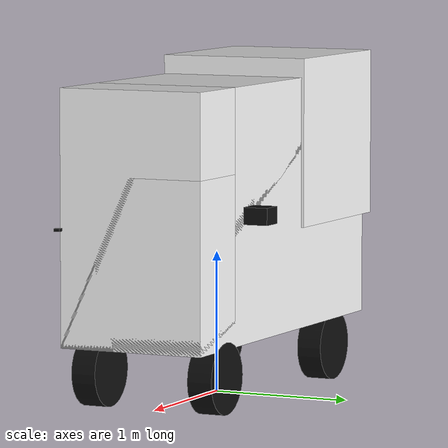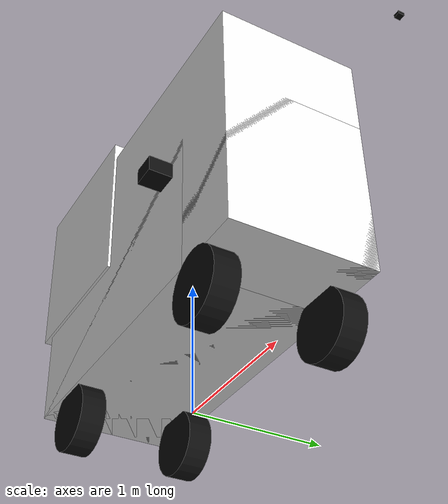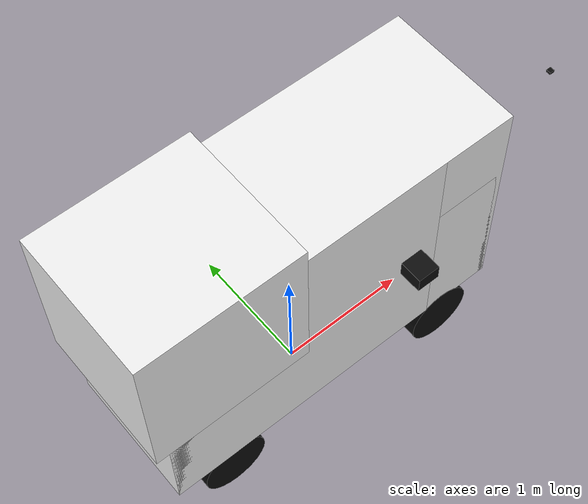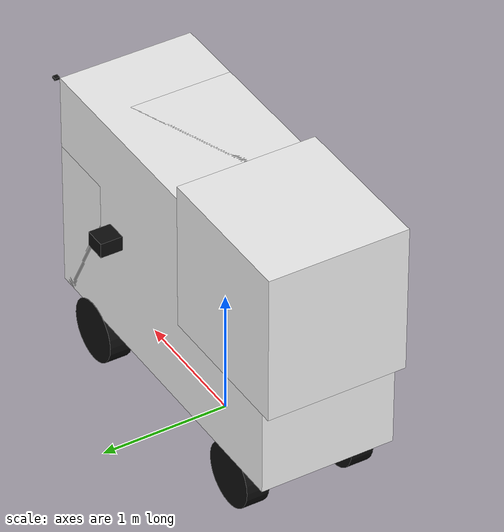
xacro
<?xml version="1.0"?>
<robot name="bee1" xmlns:xacro="http://www.ros.org/wiki/xacro">

  <xacro:property name="govde_uzunluk" value="2.740"/>
  <xacro:property name="govde_genislik" value="1.060"/>
  <xacro:property name="govde_yukseklik" value="1.785"/>
  <xacro:property name="dingil_mesafesi" value="1.860"/>
  <xacro:property name="govde_z_offset" value="0.45"/>
  <xacro:property name="tekerlek_yaricap" value="0.25"/>
  <xacro:property name="tekerlek_genislik" value="0.18"/>
  <xacro:property name="kasa_uzunluk" value="1.2"/>
  <xacro:property name="kasa_genislik" value="1.1"/>
  <xacro:property name="kasa_yukseklik" value="1.2"/>

  <material name="beyaz"><color rgba="0.95 0.95 0.95 1"/></material>
  <material name="siyah"><color rgba="0.05 0.05 0.05 1"/></material>
  <material name="kirmizi"><color rgba="0.8 0 0 1"/></material>

  <link name="base_link">
    <visual>
      <origin xyz="0 0 0" rpy="0 0 0"/>
      <geometry>
        <box size="${govde_uzunluk} ${govde_genislik} ${govde_yukseklik}"/>
      </geometry>
      <material name="beyaz"/>
    </visual>
    <inertial>
      <origin xyz="0 0 0" rpy="0 0 0" />
      <mass value="294.0" />
      <inertia
        ixx="${(1/12) * 50.0 * (govde_genislik*govde_genislik + govde_yukseklik*govde_yukseklik)}" ixy="0.0" ixz="0.0"
        iyy="${(1/12) * 50.0 * (govde_uzunluk*govde_uzunluk + govde_yukseklik*govde_yukseklik)}" iyz="0.0"
        izz="${(1/12) * 50.0 * (govde_uzunluk*govde_uzunluk + govde_genislik*govde_genislik)}" />
    </inertial>
    <collision>
      <origin xyz="0 0 0" rpy="0 0 0"/>
      <geometry>
        <box size="${govde_uzunluk} ${govde_genislik} ${govde_yukseklik}"/>
      </geometry>
    </collision>
  </link>

  <link name="arka_kabin_link">
    <visual>
      <origin xyz="0 0 0" rpy="0 0 0"/>
      <geometry>
        <box size="${4 * govde_uzunluk / 5} ${govde_genislik} ${govde_yukseklik}"/>
      </geometry>
      <material name="beyaz"/>
    </visual>
  </link>
  <joint name="arka_kabin_joint" type="fixed">
    <parent link="base_link"/>
    <child link="arka_kabin_link"/>
    <origin xyz="-${govde_uzunluk / 10} 0 0" rpy="0 0 0"/>
  </joint>

  <link name="on_kabin_link">
    <visual>
      <origin xyz="0 0 0" rpy="0 0 0"/>
      <geometry>
        <box size="${govde_uzunluk / 5} ${govde_genislik} ${2 * govde_yukseklik / 3}"/>
      </geometry>
      <material name="beyaz"/>
    </visual>
  </link>
  <joint name="on_kabin_joint" type="fixed">
    <parent link="base_link"/>
    <child link="on_kabin_link"/>
    <origin xyz="${4 * govde_uzunluk / 10} 0 -${govde_yukseklik / 6}" rpy="0 0 0"/>
  </joint>

  <link name="kasa_link">
    <visual>
      <origin xyz="0 0 0" rpy="0 0 0"/>
      <geometry>
        <box size="${kasa_uzunluk} ${kasa_genislik} ${kasa_yukseklik}"/>
      </geometry>
      <material name="beyaz"/>
    </visual>
    <collision>
      <origin xyz="0 0 0" rpy="0 0 0"/>
      <geometry>
        <box size="${kasa_uzunluk} ${kasa_genislik} ${kasa_yukseklik}"/>
      </geometry>
    </collision>
    <inertial>
      <mass value="406.0"/>
      <inertia
        ixx="${40.0 * (kasa_genislik * kasa_genislik + kasa_yukseklik * kasa_yukseklik) / 12.0}"
        ixy="0" ixz="0"
        iyy="${40.0 * (kasa_uzunluk * kasa_uzunluk + kasa_yukseklik * kasa_yukseklik) / 12.0}"
        iyz="0"
        izz="${40.0 * (kasa_genislik * kasa_genislik + kasa_uzunluk * kasa_uzunluk) / 12.0}"/>
    </inertial>
  </link>
  <joint name="kasa_joint" type="fixed">
    <parent link="base_link"/>
    <child link="kasa_link"/>
    <origin xyz="-0.875 0 0.4275"/>
  </joint>

  <link name="base_footprint"/>
  <joint name="base_footprint_joint" type="fixed">
    <parent link="base_footprint"/>
    <child link="base_link"/>
    <origin xyz="0 0 ${govde_z_offset + govde_yukseklik/2}" rpy="0 0 0"/>
  </joint>

  <link name="front_aks">
    <inertial>
      <mass value="0.1"/>
      <inertia ixx="0.001" ixy="0" ixz="0" iyy="0.001" iyz="0" izz="0.001"/>
    </inertial>
  </link>
  <joint name="front_aks_joint" type="fixed">
    <parent link="base_footprint"/>
    <child link="front_aks"/>
    <origin xyz="0.96 0 0" rpy="0 0 0"/>
  </joint>

  <xacro:macro name="dikiz_aynasi" params="ad y_ofset">
    <link name="${ad}">
      <visual>
        <origin xyz="0 0 0" rpy="0 0 0"/>
        <geometry>
          <box size="0.17 0.18 0.12"/>
        </geometry>
        <material name="siyah"/>
      </visual>
      <inertial>
        <mass value="1.0"/>
        <inertia ixx="0.003" ixy="0" ixz="0" iyy="0.003" iyz="0" izz="0.003" />
      </inertial>
    </link>
    <joint name="${ad}_joint" type="fixed">
      <parent link="base_link"/>
      <child link="${ad}"/>
      <origin xyz="0.6 ${y_ofset} 0" rpy="0 0 0"/>
    </joint>
    <gazebo reference="${ad}">
      <material>Gazebo/Black</material>
    </gazebo>
  </xacro:macro>

  <xacro:dikiz_aynasi ad="dikiz_sol" y_ofset="0.615"/>
  <xacro:dikiz_aynasi ad="dikiz_sag" y_ofset="-0.615"/>

  <xacro:macro name="tekerlek" params="ad x_ofset y_ofset">
    <link name="${ad}">
      <visual>
        <origin xyz="0 0 0" rpy="1.5708 0 0"/>
        <geometry>
          <cylinder radius="${tekerlek_yaricap}" length="${tekerlek_genislik}"/>
        </geometry>
        <material name="siyah"/>
      </visual>
      <collision>
        <origin xyz="0 0 0" rpy="1.5708 0 0"/>
        <geometry>
          <cylinder radius="${tekerlek_yaricap}" length="${tekerlek_genislik}"/>
        </geometry>
      </collision>
      <inertial>
        <mass value="15"/>
        <inertia ixx="0.5" ixy="0" ixz="0" iyy="0.5" iyz="0" izz="0.5"/>
      </inertial>
    </link>
    <joint name="${ad}_joint" type="continuous">
      <parent link="base_footprint"/>
      <child link="${ad}"/>
      <origin xyz="${x_ofset} ${y_ofset} ${tekerlek_yaricap}" rpy="0 0 0"/>
      <axis xyz="0 1 0"/>
    </joint>
  </xacro:macro>

  <xacro:tekerlek ad="tekerlek_on_sol"   x_ofset="0.96"  y_ofset="0.443"/>
  <xacro:tekerlek ad="tekerlek_on_sag"   x_ofset="0.96"  y_ofset="-0.443"/>
  <xacro:tekerlek ad="tekerlek_arka_sol" x_ofset="-0.9"  y_ofset="0.425"/>
  <xacro:tekerlek ad="tekerlek_arka_sag" x_ofset="-0.9"  y_ofset="-0.425"/>

  <link name="aks_on_sol"/>
  <joint name="aks_on_sol_joint" type="revolute">
    <parent link="base_link"/>
    <child link="aks_on_sol"/>
    <origin xyz="0.96 -0.443 0.25" rpy="0 0 0"/>
    <axis xyz="0 0 1"/>
    <limit lower="-0.567" upper="0.567" effort="100.0" velocity="10.0"/>
  </joint>

  <link name="aks_on_sag"/>
  <joint name="aks_on_sag_joint" type="revolute">
    <parent link="base_link"/>
    <child link="aks_on_sag"/>
    <origin xyz="0.96 0.443 0.25" rpy="0 0 0"/>
    <axis xyz="0 0 1"/>
    <limit lower="-0.567" upper="0.567" effort="100.0" velocity="10.0"/>
  </joint>

  <link name="lidar_link">
    <visual>
      <geometry><cylinder radius="0.05" length="0.07"/></geometry>
      <material name="siyah"/>
    </visual>
  </link>
  <joint name="lidar_joint" type="fixed">
    <parent link="front_aks"/>
    <child link="lidar_link"/>
    <origin xyz="-0.177 0 0.62" rpy="0 0 0"/>
  </joint>

  <link name="kamera_sag_link">
    <visual>
      <geometry><box size="0.05 0.05 0.05"/></geometry>
      <material name="kirmizi"/>
    </visual>
  </link>
  <joint name="kamera_sag_joint" type="fixed">
    <parent link="front_aks"/>
    <child link="kamera_sag_link"/>
    <origin xyz="-0.205 0.06 0.685" rpy="0 0 0"/>
  </joint>
  <link name="kamera_sag_link_optical"/>
  <joint name="kamera_sag_link_optical_joint" type="fixed">
    <parent link="kamera_sag_link"/>
    <child link="kamera_sag_link_optical"/>
    <origin xyz="0 0 0" rpy="-1.5708 0 -1.5708"/>
  </joint>

  <link name="kamera_sol_link">
    <visual>
      <geometry><box size="0.05 0.05 0.05"/></geometry>
      <material name="kirmizi"/>
    </visual>
  </link>
  <joint name="kamera_sol_joint" type="fixed">
    <parent link="front_aks"/>
    <child link="kamera_sol_link"/>
    <origin xyz="-0.205 -0.06 0.685" rpy="0 0 0"/>
  </joint>
  <link name="kamera_sol_link_optical"/>
  <joint name="kamera_sol_link_optical_joint" type="fixed">
    <parent link="kamera_sol_link"/>
    <child link="kamera_sol_link_optical"/>
    <origin xyz="0 0 0" rpy="-1.5708 0 -1.5708"/>
  </joint>

  <link name="gps_imu_link">
    <visual>
      <geometry><box size="0.04 0.04 0.02"/></geometry>
      <material name="siyah"/>
    </visual>
  </link>
  <joint name="gps_imu_joint" type="fixed">
    <parent link="front_aks"/>
    <child link="gps_imu_link"/>
    <origin xyz="1.44 0 1.39" rpy="0 0 0"/>
  </joint>

  <gazebo>
    <plugin name="diff_drive" filename="libgazebo_ros_diff_drive.so">
      <ros>
        <namespace>/</namespace>
      </ros>
      <left_joint>tekerlek_arka_sol_joint</left_joint>
      <right_joint>tekerlek_arka_sag_joint</right_joint>
      <wheel_separation>${govde_genislik + 0.16}</wheel_separation>
      <wheel_diameter>${tekerlek_yaricap * 2}</wheel_diameter>
      <max_wheel_torque>5000</max_wheel_torque>
      <max_speed>8.33</max_speed>
      <max_acceleration>2.5</max_acceleration>
      <max_deceleration>6.5</max_deceleration>
      <max_steering_angle>0.567</max_steering_angle>
      <steering_speed>10.0</steering_speed>
      <max_wheel_acceleration>2.5</max_wheel_acceleration>
      <command_topic>cmd_vel</command_topic>
      <odometry_topic>odom</odometry_topic>
      <odometry_frame>odom</odometry_frame>
      <robot_base_frame>base_footprint</robot_base_frame>
      <publish_odom>true</publish_odom>
      <publish_odom_tf>true</publish_odom_tf>
      <publish_wheel_tf>true</publish_wheel_tf>
    </plugin>
  </gazebo>

  <gazebo reference="tekerlek_on_sol"><material>Gazebo/Black</material></gazebo>
  <gazebo reference="tekerlek_on_sag"><material>Gazebo/Black</material></gazebo>
  <gazebo reference="tekerlek_arka_sol"><material>Gazebo/Black</material></gazebo>
  <gazebo reference="tekerlek_arka_sag"><material>Gazebo/Black</material></gazebo>
  <gazebo reference="kasa_link"><material>Gazebo/White</material></gazebo>

  <gazebo reference="lidar_link">
    <sensor name="lidar" type="ray">
      <pose>0 0 0 0 0 0</pose>
      <visualize>true</visualize>
      <update_rate>10</update_rate>
      <ray>
        <scan>
          <horizontal>
            <samples>360</samples>
            <resolution>1</resolution>
            <min_angle>-3.14159</min_angle>
            <max_angle>3.14159</max_angle>
          </horizontal>
        </scan>
        <range>
          <min>0.7</min>
          <max>100.0</max>
          <resolution>0.03</resolution>
          <noise>
            <type>gaussian</type>
            <mean>0.0</mean>
            <stddev>0.01</stddev>
          </noise>
        </range>
      </ray>
      <plugin name="lidar_ros" filename="libgazebo_ros_ray_sensor.so">
        <ros>
          <namespace>/</namespace>
          <remapping>~/out:=scan</remapping>
        </ros>
        <output_type>sensor_msgs/LaserScan</output_type>
        <frame_name>lidar_link</frame_name>
      </plugin>
    </sensor>
  </gazebo>

  <xacro:macro name="gazebo_kamera_sensor" params="referans_linki ad topic_adi">
    <gazebo reference="${referans_linki}">
      <sensor type="camera" name="sensor_${ad}">
        <update_rate>30.0</update_rate>
        <camera name="${ad}">
          <horizontal_fov>1.92</horizontal_fov>
          <image>
            <width>1280</width>
            <height>720</height>
            <format>R8G8B8</format>
          </image>
          <clip><near>0.1</near><far>100.0</far></clip>
          <noise>
            <type>gaussian</type>
            <mean>0.0</mean>
            <stddev>0.007</stddev>
          </noise>
        </camera>
        <plugin name="${ad}_kamera_surucu" filename="libgazebo_ros_camera.so">
          <ros>
            <namespace>/</namespace>
            <remapping>~/image_raw:=camera/${topic_adi}/image_raw</remapping>
            <remapping>~/camera_info:=camera/${topic_adi}/camera_info</remapping>
          </ros>
          <frame_name>${referans_linki}_optical</frame_name>
        </plugin>
      </sensor>
    </gazebo>
  </xacro:macro>

  <xacro:gazebo_kamera_sensor referans_linki="kamera_sol_link" ad="sol" topic_adi="left"/>
  <xacro:gazebo_kamera_sensor referans_linki="kamera_sag_link" ad="sag" topic_adi="right"/>

  <gazebo reference="gps_imu_link">
    <sensor type="gps" name="gps_sensor">
      <always_on>true</always_on>
      <update_rate>10.0</update_rate>
      <plugin name="gps_surucu" filename="libgazebo_ros_gps_sensor.so">
        <ros>
          <namespace>/</namespace>
          <remapping>~/out:=gps/data</remapping>
        </ros>
        <frame_name>gps_imu_link</frame_name>
      </plugin>
    </sensor>

    <!-- FIX 3: renamed from "gps_sensor" to "imu_sensor" to avoid name collision -->
    <sensor type="imu" name="imu_sensor">
      <always_on>true</always_on>
      <update_rate>100.0</update_rate>
      <imu>
        <angular_velocity>
          <x><noise type="gaussian"><mean>0.0</mean><stddev>0.0</stddev></noise></x>
          <y><noise type="gaussian"><mean>0.0</mean><stddev>0.0</stddev></noise></y>
          <z><noise type="gaussian"><mean>0.0</mean><stddev>0.0</stddev></noise></z>
        </angular_velocity>
        <linear_acceleration>
          <x><noise type="gaussian"><mean>0.0</mean><stddev>0.0</stddev></noise></x>
          <y><noise type="gaussian"><mean>0.0</mean><stddev>0.0</stddev></noise></y>
          <z><noise type="gaussian"><mean>0.0</mean><stddev>0.0</stddev></noise></z>
        </linear_acceleration>
      </imu>
      <plugin name="imu_surucu" filename="libgazebo_ros_imu_sensor.so">
        <ros>
          <namespace>/</namespace>
          <remapping>~/out:=imu/data</remapping>
        </ros>
        <frame_name>gps_imu_link</frame_name>
      </plugin>
    </sensor>
  </gazebo>

</robot>
